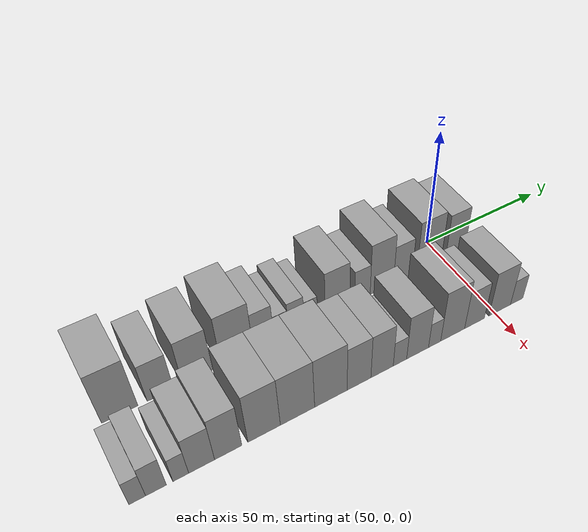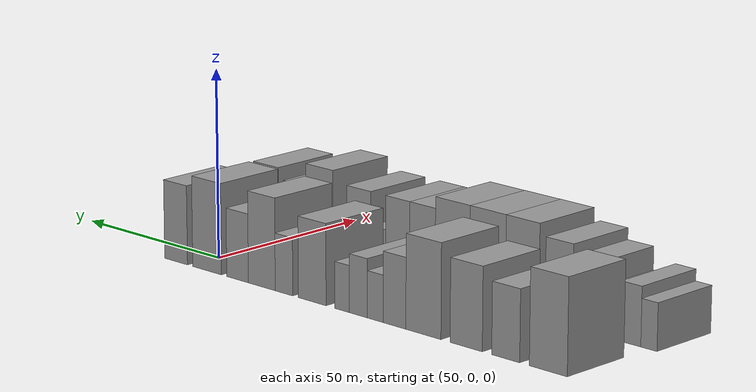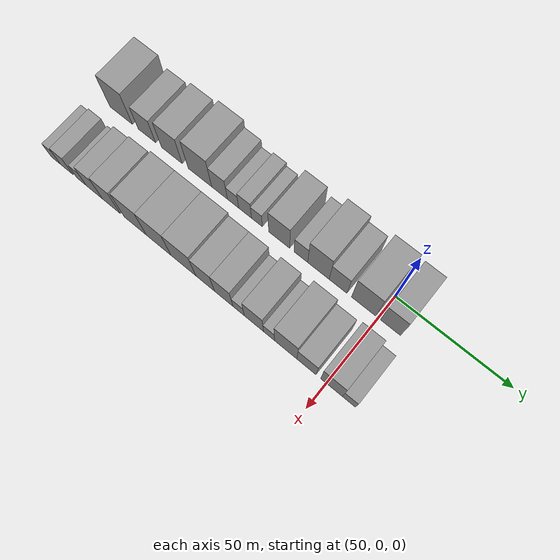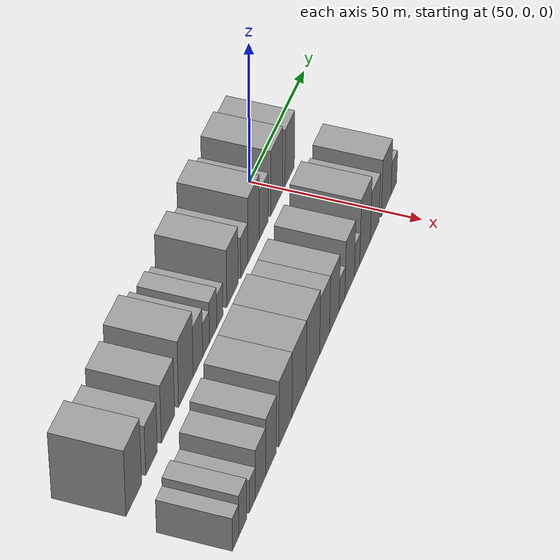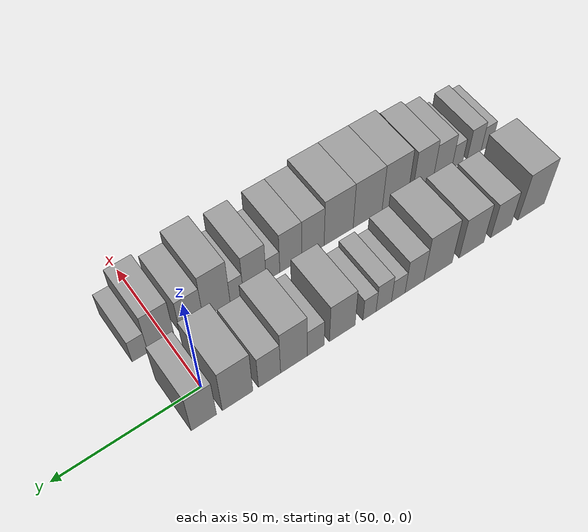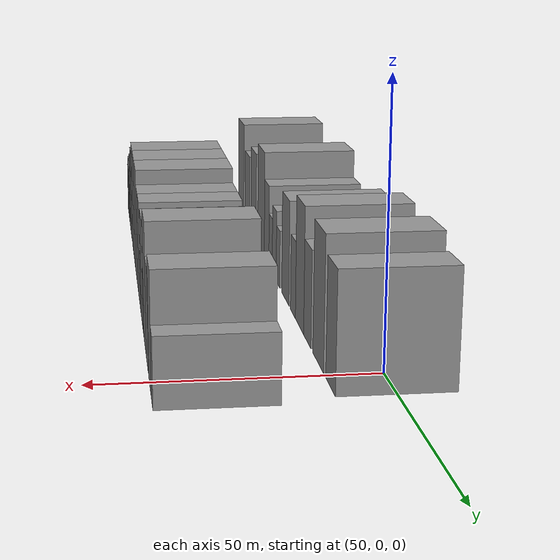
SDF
<sdf version="1.6">
 <world name="default">
  <model name="building_16">
   <static>1</static>
   <pose>50.0000 -122.4694 0 0.000000 0.000000 0.000000</pose>
   <link name="link">
    <pose>0 0 12.00 0 0 0</pose>
    <collision name="collision"><geometry><box><size>20.0000 11.6947 24.0000</size></box></geometry></collision>
    <visual name="visual">
     <cast_shadows>0</cast_shadows>
     <geometry><box><size>20.0000 11.6947 24.0000</size></box></geometry>
     <material>
      <script>
       <uri>model://grey_wall/materials/scripts</uri>
       <uri>model://grey_wall/materials/textures</uri>
       <name>vrc/grey_wall</name>
      </script>
     </material>
    </visual>
   </link>
  </model>
  <model name="building_17">
   <static>1</static>
   <pose>50.0000 -109.2025 0 0.000000 0.000000 0.000000</pose>
   <link name="link">
    <pose>0 0 9.00 0 0 0</pose>
    <collision name="collision"><geometry><box><size>20.0000 8.8392 18.0000</size></box></geometry></collision>
    <visual name="visual">
     <cast_shadows>0</cast_shadows>
     <geometry><box><size>20.0000 8.8392 18.0000</size></box></geometry>
     <material>
      <script>
       <uri>model://grey_wall/materials/scripts</uri>
       <uri>model://grey_wall/materials/textures</uri>
       <name>vrc/grey_wall</name>
      </script>
     </material>
    </visual>
   </link>
  </model>
  <model name="building_18">
   <static>1</static>
   <pose>50.0000 -96.5926 0 0.000000 0.000000 0.000000</pose>
   <link name="link">
    <pose>0 0 10.50 0 0 0</pose>
    <collision name="collision"><geometry><box><size>20.0000 10.3805 21.0000</size></box></geometry></collision>
    <visual name="visual">
     <cast_shadows>0</cast_shadows>
     <geometry><box><size>20.0000 10.3805 21.0000</size></box></geometry>
     <material>
      <script>
       <uri>model://grey_wall/materials/scripts</uri>
       <uri>model://grey_wall/materials/textures</uri>
       <name>vrc/grey_wall</name>
      </script>
     </material>
    </visual>
   </link>
  </model>
  <model name="building_19">
   <static>1</static>
   <pose>50.0000 -82.6011 0 0.000000 0.000000 0.000000</pose>
   <link name="link">
    <pose>0 0 12.00 0 0 0</pose>
    <collision name="collision"><geometry><box><size>20.0000 11.6026 24.0000</size></box></geometry></collision>
    <visual name="visual">
     <cast_shadows>0</cast_shadows>
     <geometry><box><size>20.0000 11.6026 24.0000</size></box></geometry>
     <material>
      <script>
       <uri>model://grey_wall/materials/scripts</uri>
       <uri>model://grey_wall/materials/textures</uri>
       <name>vrc/grey_wall</name>
      </script>
     </material>
    </visual>
   </link>
  </model>
  <model name="building_20">
   <static>1</static>
   <pose>50.0000 -72.9751 0 0.000000 0.000000 0.000000</pose>
   <link name="link">
    <pose>0 0 9.00 0 0 0</pose>
    <collision name="collision"><geometry><box><size>20.0000 7.6494 18.0000</size></box></geometry></collision>
    <visual name="visual">
     <cast_shadows>0</cast_shadows>
     <geometry><box><size>20.0000 7.6494 18.0000</size></box></geometry>
     <material>
      <script>
       <uri>model://grey_wall/materials/scripts</uri>
       <uri>model://grey_wall/materials/textures</uri>
       <name>vrc/grey_wall</name>
      </script>
     </material>
    </visual>
   </link>
  </model>
  <model name="building_21">
   <static>1</static>
   <pose>50.0000 -66.4450 0 0.000000 0.000000 0.000000</pose>
   <link name="link">
    <pose>0 0 6.00 0 0 0</pose>
    <collision name="collision"><geometry><box><size>20.0000 5.4107 12.0000</size></box></geometry></collision>
    <visual name="visual">
     <cast_shadows>0</cast_shadows>
     <geometry><box><size>20.0000 5.4107 12.0000</size></box></geometry>
     <material>
      <script>
       <uri>model://grey_wall/materials/scripts</uri>
       <uri>model://grey_wall/materials/textures</uri>
       <name>vrc/grey_wall</name>
      </script>
     </material>
    </visual>
   </link>
  </model>
  <model name="building_22">
   <static>1</static>
   <pose>50.0000 -60.7023 0 0.000000 0.000000 0.000000</pose>
   <link name="link">
    <pose>0 0 7.50 0 0 0</pose>
    <collision name="collision"><geometry><box><size>20.0000 6.0748 15.0000</size></box></geometry></collision>
    <visual name="visual">
     <cast_shadows>0</cast_shadows>
     <geometry><box><size>20.0000 6.0748 15.0000</size></box></geometry>
     <material>
      <script>
       <uri>model://grey_wall/materials/scripts</uri>
       <uri>model://grey_wall/materials/textures</uri>
       <name>vrc/grey_wall</name>
      </script>
     </material>
    </visual>
   </link>
  </model>
  <model name="building_23">
   <static>1</static>
   <pose>50.0000 -55.1028 0 0.000000 0.000000 0.000000</pose>
   <link name="link">
    <pose>0 0 6.00 0 0 0</pose>
    <collision name="collision"><geometry><box><size>20.0000 5.1241 12.0000</size></box></geometry></collision>
    <visual name="visual">
     <cast_shadows>0</cast_shadows>
     <geometry><box><size>20.0000 5.1241 12.0000</size></box></geometry>
     <material>
      <script>
       <uri>model://grey_wall/materials/scripts</uri>
       <uri>model://grey_wall/materials/textures</uri>
       <name>vrc/grey_wall</name>
      </script>
     </material>
    </visual>
   </link>
  </model>
  <model name="building_24">
   <static>1</static>
   <pose>50.0000 -44.6592 0 0.000000 0.000000 0.000000</pose>
   <link name="link">
    <pose>0 0 10.50 0 0 0</pose>
    <collision name="collision"><geometry><box><size>20.0000 9.7632 21.0000</size></box></geometry></collision>
    <visual name="visual">
     <cast_shadows>0</cast_shadows>
     <geometry><box><size>20.0000 9.7632 21.0000</size></box></geometry>
     <material>
      <script>
       <uri>model://grey_wall/materials/scripts</uri>
       <uri>model://grey_wall/materials/textures</uri>
       <name>vrc/grey_wall</name>
      </script>
     </material>
    </visual>
   </link>
  </model>
  <model name="building_25">
   <static>1</static>
   <pose>50.0000 -34.6333 0 0.000000 0.000000 0.000000</pose>
   <link name="link">
    <pose>0 0 7.50 0 0 0</pose>
    <collision name="collision"><geometry><box><size>20.0000 6.2885 15.0000</size></box></geometry></collision>
    <visual name="visual">
     <cast_shadows>0</cast_shadows>
     <geometry><box><size>20.0000 6.2885 15.0000</size></box></geometry>
     <material>
      <script>
       <uri>model://grey_wall/materials/scripts</uri>
       <uri>model://grey_wall/materials/textures</uri>
       <name>vrc/grey_wall</name>
      </script>
     </material>
    </visual>
   </link>
  </model>
  <model name="building_26">
   <static>1</static>
   <pose>50.0000 -26.6093 0 0.000000 0.000000 0.000000</pose>
   <link name="link">
    <pose>0 0 12.00 0 0 0</pose>
    <collision name="collision"><geometry><box><size>20.0000 9.7597 24.0000</size></box></geometry></collision>
    <visual name="visual">
     <cast_shadows>0</cast_shadows>
     <geometry><box><size>20.0000 9.7597 24.0000</size></box></geometry>
     <material>
      <script>
       <uri>model://grey_wall/materials/scripts</uri>
       <uri>model://grey_wall/materials/textures</uri>
       <name>vrc/grey_wall</name>
      </script>
     </material>
    </visual>
   </link>
  </model>
  <model name="building_27">
   <static>1</static>
   <pose>50.0000 -17.7537 0 0.000000 0.000000 0.000000</pose>
   <link name="link">
    <pose>0 0 9.00 0 0 0</pose>
    <collision name="collision"><geometry><box><size>20.0000 7.9515 18.0000</size></box></geometry></collision>
    <visual name="visual">
     <cast_shadows>0</cast_shadows>
     <geometry><box><size>20.0000 7.9515 18.0000</size></box></geometry>
     <material>
      <script>
       <uri>model://grey_wall/materials/scripts</uri>
       <uri>model://grey_wall/materials/textures</uri>
       <name>vrc/grey_wall</name>
      </script>
     </material>
    </visual>
   </link>
  </model>
  <model name="building_28">
   <static>1</static>
   <pose>50.0000 -6.4030 0 0.000000 0.000000 0.000000</pose>
   <link name="link">
    <pose>0 0 12.00 0 0 0</pose>
    <collision name="collision"><geometry><box><size>20.0000 10.7500 24.0000</size></box></geometry></collision>
    <visual name="visual">
     <cast_shadows>0</cast_shadows>
     <geometry><box><size>20.0000 10.7500 24.0000</size></box></geometry>
     <material>
      <script>
       <uri>model://grey_wall/materials/scripts</uri>
       <uri>model://grey_wall/materials/textures</uri>
       <name>vrc/grey_wall</name>
      </script>
     </material>
    </visual>
   </link>
  </model>
  <model name="building_29">
   <static>1</static>
   <pose>50.0000 5.3258 0 0.000000 0.000000 0.000000</pose>
   <link name="link">
    <pose>0 0 10.50 0 0 0</pose>
    <collision name="collision"><geometry><box><size>20.0000 8.7075 21.0000</size></box></geometry></collision>
    <visual name="visual">
     <cast_shadows>0</cast_shadows>
     <geometry><box><size>20.0000 8.7075 21.0000</size></box></geometry>
     <material>
      <script>
       <uri>model://grey_wall/materials/scripts</uri>
       <uri>model://grey_wall/materials/textures</uri>
       <name>vrc/grey_wall</name>
      </script>
     </material>
    </visual>
   </link>
  </model>
  <model name="building_78">
   <static>1</static>
   <pose>79.0000 -128.4122 0 0.000000 0.000000 0.000000</pose>
   <link name="link">
    <pose>0 0 6.00 0 0 0</pose>
    <collision name="collision"><geometry><box><size>20.0000 4.9716 12.0000</size></box></geometry></collision>
    <visual name="visual">
     <cast_shadows>0</cast_shadows>
     <geometry><box><size>20.0000 4.9716 12.0000</size></box></geometry>
     <material>
      <script>
       <uri>model://grey_wall/materials/scripts</uri>
       <uri>model://grey_wall/materials/textures</uri>
       <name>vrc/grey_wall</name>
      </script>
     </material>
    </visual>
   </link>
  </model>
  <model name="building_79">
   <static>1</static>
   <pose>79.0000 -122.7783 0 0.000000 0.000000 0.000000</pose>
   <link name="link">
    <pose>0 0 7.50 0 0 0</pose>
    <collision name="collision"><geometry><box><size>20.0000 6.2963 15.0000</size></box></geometry></collision>
    <visual name="visual">
     <cast_shadows>0</cast_shadows>
     <geometry><box><size>20.0000 6.2963 15.0000</size></box></geometry>
     <material>
      <script>
       <uri>model://grey_wall/materials/scripts</uri>
       <uri>model://grey_wall/materials/textures</uri>
       <name>vrc/grey_wall</name>
      </script>
     </material>
    </visual>
   </link>
  </model>
  <model name="building_80">
   <static>1</static>
   <pose>79.0000 -115.1872 0 0.000000 0.000000 0.000000</pose>
   <link name="link">
    <pose>0 0 6.00 0 0 0</pose>
    <collision name="collision"><geometry><box><size>20.0000 4.8861 12.0000</size></box></geometry></collision>
    <visual name="visual">
     <cast_shadows>0</cast_shadows>
     <geometry><box><size>20.0000 4.8861 12.0000</size></box></geometry>
     <material>
      <script>
       <uri>model://grey_wall/materials/scripts</uri>
       <uri>model://grey_wall/materials/textures</uri>
       <name>vrc/grey_wall</name>
      </script>
     </material>
    </visual>
   </link>
  </model>
  <model name="building_81">
   <static>1</static>
   <pose>79.0000 -108.6356 0 0.000000 0.000000 0.000000</pose>
   <link name="link">
    <pose>0 0 9.00 0 0 0</pose>
    <collision name="collision"><geometry><box><size>20.0000 8.2170 18.0000</size></box></geometry></collision>
    <visual name="visual">
     <cast_shadows>0</cast_shadows>
     <geometry><box><size>20.0000 8.2170 18.0000</size></box></geometry>
     <material>
      <script>
       <uri>model://grey_wall/materials/scripts</uri>
       <uri>model://grey_wall/materials/textures</uri>
       <name>vrc/grey_wall</name>
      </script>
     </material>
    </visual>
   </link>
  </model>
  <model name="building_82">
   <static>1</static>
   <pose>79.0000 -100.1014 0 0.000000 0.000000 0.000000</pose>
   <link name="link">
    <pose>0 0 10.50 0 0 0</pose>
    <collision name="collision"><geometry><box><size>20.0000 8.8514 21.0000</size></box></geometry></collision>
    <visual name="visual">
     <cast_shadows>0</cast_shadows>
     <geometry><box><size>20.0000 8.8514 21.0000</size></box></geometry>
     <material>
      <script>
       <uri>model://grey_wall/materials/scripts</uri>
       <uri>model://grey_wall/materials/textures</uri>
       <name>vrc/grey_wall</name>
      </script>
     </material>
    </visual>
   </link>
  </model>
  <model name="building_83">
   <static>1</static>
   <pose>79.0000 -88.1874 0 0.000000 0.000000 0.000000</pose>
   <link name="link">
    <pose>0 0 12.00 0 0 0</pose>
    <collision name="collision"><geometry><box><size>20.0000 10.9766 24.0000</size></box></geometry></collision>
    <visual name="visual">
     <cast_shadows>0</cast_shadows>
     <geometry><box><size>20.0000 10.9766 24.0000</size></box></geometry>
     <material>
      <script>
       <uri>model://grey_wall/materials/scripts</uri>
       <uri>model://grey_wall/materials/textures</uri>
       <name>vrc/grey_wall</name>
      </script>
     </material>
    </visual>
   </link>
  </model>
  <model name="building_84">
   <static>1</static>
   <pose>79.0000 -76.7188 0 0.000000 0.000000 0.000000</pose>
   <link name="link">
    <pose>0 0 12.00 0 0 0</pose>
    <collision name="collision"><geometry><box><size>20.0000 11.9605 24.0000</size></box></geometry></collision>
    <visual name="visual">
     <cast_shadows>0</cast_shadows>
     <geometry><box><size>20.0000 11.9605 24.0000</size></box></geometry>
     <material>
      <script>
       <uri>model://grey_wall/materials/scripts</uri>
       <uri>model://grey_wall/materials/textures</uri>
       <name>vrc/grey_wall</name>
      </script>
     </material>
    </visual>
   </link>
  </model>
  <model name="building_85">
   <static>1</static>
   <pose>79.0000 -64.8581 0 0.000000 0.000000 0.000000</pose>
   <link name="link">
    <pose>0 0 12.00 0 0 0</pose>
    <collision name="collision"><geometry><box><size>20.0000 11.7610 24.0000</size></box></geometry></collision>
    <visual name="visual">
     <cast_shadows>0</cast_shadows>
     <geometry><box><size>20.0000 11.7610 24.0000</size></box></geometry>
     <material>
      <script>
       <uri>model://grey_wall/materials/scripts</uri>
       <uri>model://grey_wall/materials/textures</uri>
       <name>vrc/grey_wall</name>
      </script>
     </material>
    </visual>
   </link>
  </model>
  <model name="building_86">
   <static>1</static>
   <pose>79.0000 -54.5589 0 0.000000 0.000000 0.000000</pose>
   <link name="link">
    <pose>0 0 10.50 0 0 0</pose>
    <collision name="collision"><geometry><box><size>20.0000 8.8374 21.0000</size></box></geometry></collision>
    <visual name="visual">
     <cast_shadows>0</cast_shadows>
     <geometry><box><size>20.0000 8.8374 21.0000</size></box></geometry>
     <material>
      <script>
       <uri>model://grey_wall/materials/scripts</uri>
       <uri>model://grey_wall/materials/textures</uri>
       <name>vrc/grey_wall</name>
      </script>
     </material>
    </visual>
   </link>
  </model>
  <model name="building_87">
   <static>1</static>
   <pose>79.0000 -45.8797 0 0.000000 0.000000 0.000000</pose>
   <link name="link">
    <pose>0 0 10.50 0 0 0</pose>
    <collision name="collision"><geometry><box><size>20.0000 8.5209 21.0000</size></box></geometry></collision>
    <visual name="visual">
     <cast_shadows>0</cast_shadows>
     <geometry><box><size>20.0000 8.5209 21.0000</size></box></geometry>
     <material>
      <script>
       <uri>model://grey_wall/materials/scripts</uri>
       <uri>model://grey_wall/materials/textures</uri>
       <name>vrc/grey_wall</name>
      </script>
     </material>
    </visual>
   </link>
  </model>
  <model name="building_88">
   <static>1</static>
   <pose>79.0000 -39.0088 0 0.000000 0.000000 0.000000</pose>
   <link name="link">
    <pose>0 0 6.00 0 0 0</pose>
    <collision name="collision"><geometry><box><size>20.0000 5.2211 12.0000</size></box></geometry></collision>
    <visual name="visual">
     <cast_shadows>0</cast_shadows>
     <geometry><box><size>20.0000 5.2211 12.0000</size></box></geometry>
     <material>
      <script>
       <uri>model://grey_wall/materials/scripts</uri>
       <uri>model://grey_wall/materials/textures</uri>
       <name>vrc/grey_wall</name>
      </script>
     </material>
    </visual>
   </link>
  </model>
  <model name="building_89">
   <static>1</static>
   <pose>79.0000 -32.0551 0 0.000000 0.000000 0.000000</pose>
   <link name="link">
    <pose>0 0 10.50 0 0 0</pose>
    <collision name="collision"><geometry><box><size>20.0000 8.6862 21.0000</size></box></geometry></collision>
    <visual name="visual">
     <cast_shadows>0</cast_shadows>
     <geometry><box><size>20.0000 8.6862 21.0000</size></box></geometry>
     <material>
      <script>
       <uri>model://grey_wall/materials/scripts</uri>
       <uri>model://grey_wall/materials/textures</uri>
       <name>vrc/grey_wall</name>
      </script>
     </material>
    </visual>
   </link>
  </model>
  <model name="building_90">
   <static>1</static>
   <pose>79.0000 -25.2470 0 0.000000 0.000000 0.000000</pose>
   <link name="link">
    <pose>0 0 6.00 0 0 0</pose>
    <collision name="collision"><geometry><box><size>20.0000 4.9300 12.0000</size></box></geometry></collision>
    <visual name="visual">
     <cast_shadows>0</cast_shadows>
     <geometry><box><size>20.0000 4.9300 12.0000</size></box></geometry>
     <material>
      <script>
       <uri>model://grey_wall/materials/scripts</uri>
       <uri>model://grey_wall/materials/textures</uri>
       <name>vrc/grey_wall</name>
      </script>
     </material>
    </visual>
   </link>
  </model>
  <model name="building_91">
   <static>1</static>
   <pose>79.0000 -17.8389 0 0.000000 0.000000 0.000000</pose>
   <link name="link">
    <pose>0 0 12.00 0 0 0</pose>
    <collision name="collision"><geometry><box><size>20.0000 9.8862 24.0000</size></box></geometry></collision>
    <visual name="visual">
     <cast_shadows>0</cast_shadows>
     <geometry><box><size>20.0000 9.8862 24.0000</size></box></geometry>
     <material>
      <script>
       <uri>model://grey_wall/materials/scripts</uri>
       <uri>model://grey_wall/materials/textures</uri>
       <name>vrc/grey_wall</name>
      </script>
     </material>
    </visual>
   </link>
  </model>
  <model name="building_92">
   <static>1</static>
   <pose>79.0000 -8.7081 0 0.000000 0.000000 0.000000</pose>
   <link name="link">
    <pose>0 0 9.00 0 0 0</pose>
    <collision name="collision"><geometry><box><size>20.0000 8.3756 18.0000</size></box></geometry></collision>
    <visual name="visual">
     <cast_shadows>0</cast_shadows>
     <geometry><box><size>20.0000 8.3756 18.0000</size></box></geometry>
     <material>
      <script>
       <uri>model://grey_wall/materials/scripts</uri>
       <uri>model://grey_wall/materials/textures</uri>
       <name>vrc/grey_wall</name>
      </script>
     </material>
    </visual>
   </link>
  </model>
  <model name="building_93">
   <static>1</static>
   <pose>79.0000 2.1678 0 0.000000 0.000000 0.000000</pose>
   <link name="link">
    <pose>0 0 10.50 0 0 0</pose>
    <collision name="collision"><geometry><box><size>20.0000 9.3761 21.0000</size></box></geometry></collision>
    <visual name="visual">
     <cast_shadows>0</cast_shadows>
     <geometry><box><size>20.0000 9.3761 21.0000</size></box></geometry>
     <material>
      <script>
       <uri>model://grey_wall/materials/scripts</uri>
       <uri>model://grey_wall/materials/textures</uri>
       <name>vrc/grey_wall</name>
      </script>
     </material>
    </visual>
   </link>
  </model>
  <model name="building_94">
   <static>1</static>
   <pose>79.0000 9.6142 0 0.000000 0.000000 0.000000</pose>
   <link name="link">
    <pose>0 0 6.00 0 0 0</pose>
    <collision name="collision"><geometry><box><size>20.0000 5.5166 12.0000</size></box></geometry></collision>
    <visual name="visual">
     <cast_shadows>0</cast_shadows>
     <geometry><box><size>20.0000 5.5166 12.0000</size></box></geometry>
     <material>
      <script>
       <uri>model://grey_wall/materials/scripts</uri>
       <uri>model://grey_wall/materials/textures</uri>
       <name>vrc/grey_wall</name>
      </script>
     </material>
    </visual>
   </link>
  </model>
 </world>
</sdf>
